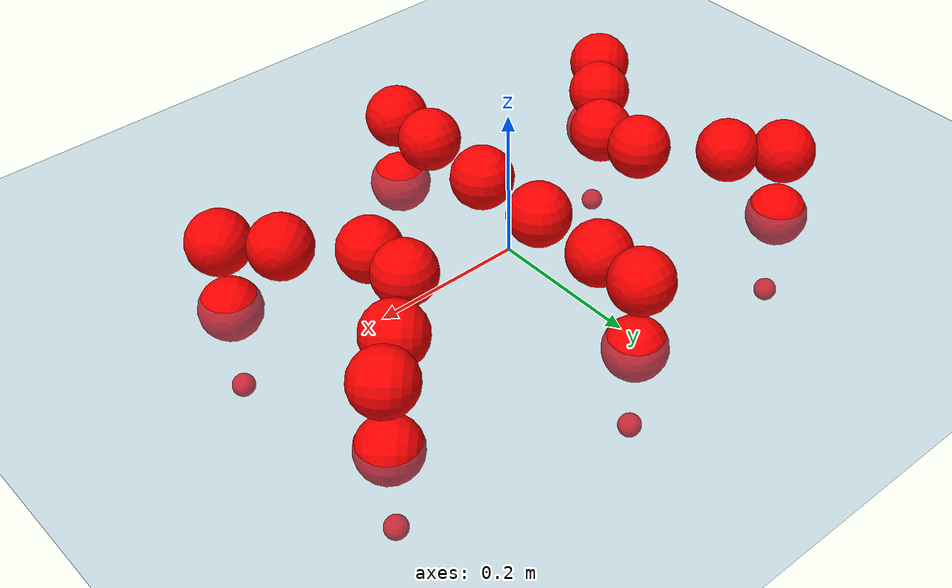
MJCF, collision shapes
<mujoco model="Golem">
  <compiler angle="radian" assetdir="assets" balanceinertia="true" inertiafromgeom="false"/>

  <option timestep="0.005" density="1.2" viscosity="2e-05"/>

  <size nkey="1"/>

  <visual>
    <quality shadowsize="8192"/>
    <map shadowclip="0.5"/>
  </visual>

  <default>
    <default class="/">
      <joint armature="0.01" damping="0.01" frictionloss="0.01"/>
      <geom contype="0" conaffinity="0" group="1" solref="-1000 -80"/>
      <site size="0.01 0.005 0.005" group="5"/>
      <general forcelimited="true" biastype="affine" gainprm="25" biasprm="0 -25 -0.5"/>
      <default class="visual">
        <geom type="mesh" group="2"/>
      </default>
      <default class="collision">
        <geom group="3"/>
      </default>
      <default class="foot">
        <geom size="0.01 0 0" condim="6" group="4" priority="1" solimp="0.015 1 0.01"/>
      </default>
      <default class="reward_collision_sphere">
        <geom group="5" rgba="1 0 0 1"/>
      </default>
    </default>
  </default>

  <asset>
    <texture type="skybox" colorspace="auto" name="//unnamed_texture_0" builtin="gradient" rgb1="0.95 0.95 0.95" rgb2="0.95 0.95 0.95" width="100" height="600"/>
    <texture type="2d" colorspace="auto" name="texplane" builtin="checker" rgb1="0.345 0.575 0.748" rgb2="0.345 0.575 0.748" markrgb="1 1 1" width="512" height="512"/>
    <material name="MatPlane" class="/" texture="texplane" texuniform="true" texrepeat="2 2" specular="0.9"/>
    <mesh name="body" class="/" file="body.stl" scale="0.001 0.001 0.001"/>
    <mesh name="coxa" class="/" file="coxa.stl" scale="0.001 0.001 0.001"/>
    <mesh name="femur" class="/" file="femur.stl" scale="0.001 0.001 0.001"/>
    <mesh name="tibia" class="/" file="tibia.stl" scale="0.001 0.001 0.001"/>
    <mesh name="tarsus" class="/" file="tarsus.stl" scale="0.001 0.001 0.001"/>
  </asset>

  <worldbody>
    <geom name="floor" class="/" size="100 100 0.125" type="plane" group="0" material="MatPlane"/>
    <light name="toplight_shadow" class="/" pos="0 0 5" dir="0.0990148 0.0990148 -0.990148" type="directional" ambient="0.04 0.04 0.04" diffuse="0.55 0.55 0.55" specular="0.12 0.12 0.12"/>
    <light name="toplight_fill" class="/" pos="0 0 5" dir="0.0990148 0.0990148 -0.990148" type="directional" castshadow="false" ambient="0.04 0.04 0.04" diffuse="0.3 0.3 0.3" specular="0.08 0.08 0.08"/>
    <body name="trunk" pos="-0.00195592 0.000812163 0.00339799" quat="1 -3.41639e-05 8.73281e-05 0.000366775">
      <inertial pos="0.00193436 0.000210293 -0.00353864" quat="1 4.71788e-05 -5.30868e-05 3.18168e-05" mass="4.01252" diaginertia="0.0286122 0.00125325 0.0256753"/>
      <joint name="//unnamed_joint_0" type="free"/>
      <geom name="//unnamed_geom_1" class="/" pos="0 0 0.0766909" quat="1 0 0 0" type="mesh" rgba="0.9 0.9 0.9 1" mesh="body"/>
      <site name="imu" class="/" pos="0.163165 -0.00642924 0.132752" size="0.0102547"/>
      <camera name="track" class="/" pos="0 -1.31757 0" quat="0.707107 0.707107 0 0" mode="trackcom"/>
      <camera name="ego_camera" class="/" pos="0.158511 0 0.11983" quat="-0.5 -0.5 0.5 0.5"/>
      <body name="coxa_RR" pos="-0.212813 -0.0570058 0.0779245" quat="0.38297 0.000439821 0.000442875 -0.923761">
        <inertial pos="0.00105449 0.00315121 0.00167827" quat="0.999928 0.00232303 0.00749561 -0.00904348" mass="0.226235" diaginertia="0.028413 0.0012824 0.0269705"/>
        <joint name="coxa_joint_RR" class="/" pos="0 0 0" axis="0.0121664 -0.0210621 -0.999704" stiffness="7.71931e-05" range="-3.14725 3.13026" armature="0.00957823" damping="0.0105231" frictionloss="0.0111191"/>
        <geom name="//unnamed_geom_2" class="/" type="mesh" rgba="0.2 0.2 0.2 1" mesh="coxa"/>
        <geom name="//unnamed_geom_3" class="reward_collision_sphere" size="0.0410186" pos="-0.0365795 0 0"/>
        <body name="femur_RR" pos="0.0688157 0.00378464 -0.00690364" quat="0.498859 -0.500374 0.500009 0.500756">
          <inertial pos="-0.00281737 0.00109893 -0.00150174" quat="0.999991 -0.00132607 -0.00337171 0.00242281" mass="0.214515" diaginertia="0.0265447 0.00121193 0.0243194"/>
          <joint name="femur_joint_RR" class="/" pos="0 0 0" axis="0.00229013 0.00176122 -0.999996" range="-3.08796 3.18642" armature="0.0100619" damping="0.0293233" frictionloss="0.0103136"/>
          <geom name="//unnamed_geom_4" class="/" type="mesh" rgba="0.9 0.9 0.9 1" mesh="femur"/>
          <geom name="//unnamed_geom_5" class="reward_collision_sphere" size="0.0410186"/>
          <body name="tibia_RR" pos="-0.00316454 -0.0709818 0.000473302" quat="-0.000233788 1 0.000306405 -0.000603302">
            <inertial pos="0.00162917 -0.000628773 -0.000113532" quat="0.999999 0.00093476 -0.00112815 -0.000641532" mass="0.215776" diaginertia="0.0263724 0.00119026 0.0234729"/>
            <joint name="tibia_joint_RR" class="/" pos="0 0 0" axis="-0.00148087 -0.0076893 0.999969" stiffness="0.00490411" range="-3.0798 3.09172" armature="0.0103314" damping="0.00825394" frictionloss="0.010942"/>
            <geom name="//unnamed_geom_6" class="/" type="mesh" rgba="0.2 0.2 0.2 1" mesh="tibia"/>
            <geom name="//unnamed_geom_7" class="reward_collision_sphere" size="0.0410186"/>
            <body name="tarsus_RR" pos="0.108481 -0.00276255 -0.00296133" quat="0.999999 -0.000406336 -0.00113949 0.000112752">
              <inertial pos="0.0771017 -0.00201568 0.000106786" quat="0.490734 0.507564 0.500936 0.500622" mass="0.219367" diaginertia="0.0278581 0.00130046 0.0253035"/>
              <joint name="tarsus_joint_RR" class="/" pos="0 0 0" axis="-0.000828809 0.000853447 0.999999" stiffness="0.0214986" range="-3.09964 3.14599" armature="0.0101583" damping="0.0192051" frictionloss="0.00992675"/>
              <geom name="//unnamed_geom_8" class="/" type="mesh" rgba="0.9 0.9 0.9 1" mesh="tarsus"/>
              <geom name="foot_1" class="foot" size="0.00999298" pos="0.136564 0 0" quat="0 -0.707107 0 0.707107"/>
              <geom name="//unnamed_geom_10" class="reward_collision_sphere" size="0.0410186"/>
              <geom name="//unnamed_geom_11" class="reward_collision_sphere" size="0.015382" pos="0.131077 0 0"/>
              <site name="foot_1" class="foot" pos="0.136564 0 0" quat="0 -0.707107 0 0.707107" size="0.0102547"/>
            </body>
          </body>
        </body>
      </body>
      <body name="coxa_RM" pos="0.000547965 -0.0891276 0.0804401" quat="0.70817 -0.000818044 -0.0008717 -0.706041">
        <inertial pos="0.00173381 -0.000196056 -0.00173882" quat="0.999956 -0.00139278 0.00556844 -0.00737013" mass="0.212317" diaginertia="0.0276747 0.00123265 0.0233638"/>
        <joint name="coxa_joint_RM" class="/" pos="0 0 0" axis="-0.00445078 -0.00300406 -0.999986" range="-3.05948 3.15538" armature="0.00883494" damping="0.0186831" frictionloss="0.0104253"/>
        <geom name="//unnamed_geom_12" class="/" type="mesh" rgba="0.2 0.2 0.2 1" mesh="coxa"/>
        <geom name="//unnamed_geom_13" class="reward_collision_sphere" size="0.0410186" pos="-0.0365795 0 0"/>
        <body name="femur_RM" pos="0.0713385 -0.00286135 0.000667945" quat="0.49917 -0.50027 0.500463 0.500096">
          <inertial pos="0.00173306 -0.0024885 0.00208564" quat="0.99996 -0.00562574 0.00655973 0.00224706" mass="0.213487" diaginertia="0.0265327 0.00123673 0.0241436"/>
          <joint name="femur_joint_RM" class="/" pos="0 0 0" axis="0.000294359 -0.00162723 -0.999999" stiffness="0.0160759" range="-3.13108 3.15473" armature="0.0111975" damping="0.00980978" frictionloss="0.00907186"/>
          <geom name="//unnamed_geom_14" class="/" type="mesh" rgba="0.9 0.9 0.9 1" mesh="femur"/>
          <geom name="//unnamed_geom_15" class="reward_collision_sphere" size="0.0410186"/>
          <body name="tibia_RM" pos="0.000459637 -0.0715021 -0.00239206" quat="-0.000270921 0.999999 -0.000826151 0.000730522">
            <inertial pos="-0.00309874 -0.00460066 0.000451582" quat="0.999923 0.0105147 -0.00522983 0.00397528" mass="0.206143" diaginertia="0.0258213 0.00118791 0.0241092"/>
            <joint name="tibia_joint_RM" class="/" pos="0 0 0" axis="-0.00283587 -0.00486809 0.999984" range="-3.13513 3.2351" armature="0.0110592" damping="0.0203732" frictionloss="0.0105336"/>
            <geom name="//unnamed_geom_16" class="/" type="mesh" rgba="0.2 0.2 0.2 1" mesh="tibia"/>
            <geom name="//unnamed_geom_17" class="reward_collision_sphere" size="0.0410186"/>
            <body name="tarsus_RM" pos="0.10993 0.0025063 0.0018836" quat="1 1.66397e-05 -1.95016e-05 3.40832e-05">
              <inertial pos="0.0754497 -0.00347554 0.00282437" quat="0.501989 0.502202 0.498415 0.497376" mass="0.226461" diaginertia="0.0272401 0.00127837 0.0241488"/>
              <joint name="tarsus_joint_RM" class="/" pos="0 0 0" axis="0.00722018 -0.000642427 0.999974" range="-3.12907 3.09239" armature="0.0109039" damping="0.0164863" frictionloss="0.0104714"/>
              <geom name="//unnamed_geom_18" class="/" type="mesh" rgba="0.9 0.9 0.9 1" mesh="tarsus"/>
              <geom name="foot_2" class="foot" size="0.0111627" pos="0.136564 0 0" quat="0 -0.707107 0 0.707107"/>
              <geom name="//unnamed_geom_20" class="reward_collision_sphere" size="0.0410186"/>
              <geom name="//unnamed_geom_21" class="reward_collision_sphere" size="0.015382" pos="0.131077 0 0"/>
              <site name="foot_2" class="foot" pos="0.136564 0 0" quat="0 -0.707107 0 0.707107" size="0.0102547"/>
            </body>
          </body>
        </body>
      </body>
      <body name="coxa_RF" pos="0.217925 -0.0572452 0.0802479" quat="0.923939 -0.000118269 -0.000195751 -0.38254">
        <inertial pos="0.00213523 0.00263042 -0.000994593" quat="0.999981 -0.0036484 -0.00279761 0.00422376" mass="0.209325" diaginertia="0.0251359 0.00123786 0.0231034"/>
        <joint name="coxa_joint_RF" class="/" pos="0 0 0" axis="0.00229776 0.00231834 -0.999995" range="-3.16051 3.13681" armature="0.0106769" damping="0.0108911" frictionloss="0.0106801"/>
        <geom name="//unnamed_geom_22" class="/" type="mesh" rgba="0.2 0.2 0.2 1" mesh="coxa"/>
        <geom name="//unnamed_geom_23" class="reward_collision_sphere" size="0.0410186" pos="-0.0365795 0 0"/>
        <body name="femur_RF" pos="0.069279 0.000183551 -0.000728953" quat="0.499459 -0.500632 0.499704 0.500204">
          <inertial pos="-0.0020406 -0.00211902 0.00164985" quat="0.999962 -0.00411764 0.00633704 0.00431227" mass="0.231267" diaginertia="0.0273536 0.00126592 0.025656"/>
          <joint name="femur_joint_RF" class="/" pos="0 0 0" axis="-0.00295648 -0.00169394 -0.999994" stiffness="0.0200562" range="-3.09304 3.19544" armature="0.0124275" damping="0.00796358" frictionloss="0.012306"/>
          <geom name="//unnamed_geom_24" class="/" type="mesh" rgba="0.9 0.9 0.9 1" mesh="femur"/>
          <geom name="//unnamed_geom_25" class="reward_collision_sphere" size="0.0410186"/>
          <body name="tibia_RF" pos="-4.12972e-05 -0.0741838 -0.00348469" quat="-0.000114533 1 -0.000213448 -0.000159018">
            <inertial pos="0.00258879 -0.00217614 -7.64492e-05" quat="0.999996 0.00156441 -0.000491577 -0.00215304" mass="0.217267" diaginertia="0.0269441 0.00123108 0.0245113"/>
            <joint name="tibia_joint_RF" class="/" pos="0 0 0" axis="-0.00716165 -0.00108405 0.999974" range="-3.12441 3.14978" armature="0.0104543" damping="0.013018" frictionloss="0.0108364"/>
            <geom name="//unnamed_geom_26" class="/" type="mesh" rgba="0.2 0.2 0.2 1" mesh="tibia"/>
            <geom name="//unnamed_geom_27" class="reward_collision_sphere" size="0.0410186"/>
            <body name="tarsus_RF" pos="0.106307 -0.000776786 0.00220969" quat="1 2.33415e-06 1.13897e-05 -7.46318e-07">
              <inertial pos="0.0751339 -0.00117441 -1.21135e-05" quat="0.492562 0.517985 0.500931 0.487998" mass="0.217521" diaginertia="0.0262445 0.00121675 0.0252451"/>
              <joint name="tarsus_joint_RF" class="/" pos="0 0 0" axis="-0.0021631 -0.00681422 0.999974" range="-3.18971 3.1266" armature="0.0119071" damping="0" frictionloss="0.0110518"/>
              <geom name="//unnamed_geom_28" class="/" type="mesh" rgba="0.9 0.9 0.9 1" mesh="tarsus"/>
              <geom name="foot_3" class="foot" size="0.0102569" pos="0.136564 0 0" quat="0 -0.707107 0 0.707107"/>
              <geom name="//unnamed_geom_30" class="reward_collision_sphere" size="0.0410186"/>
              <geom name="//unnamed_geom_31" class="reward_collision_sphere" size="0.015382" pos="0.131077 0 0"/>
              <site name="foot_3" class="foot" pos="0.136564 0 0" quat="0 -0.707107 0 0.707107" size="0.0102547"/>
            </body>
          </body>
        </body>
      </body>
      <body name="coxa_LR" pos="-0.220945 0.0554541 0.0792546" quat="0.38357 -0.000813368 -5.43697e-06 0.923511">
        <inertial pos="0.00262113 -0.00116296 -0.000105266" quat="0.999876 -0.013626 0.00795092 -0.000259992" mass="0.209094" diaginertia="0.0273102 0.00122553 0.0247205"/>
        <joint name="coxa_joint_LR" class="/" pos="0 0 0" axis="-0.0139211 0.00158557 -0.999902" stiffness="0.000399047" range="-3.12835 3.17601" armature="0.00981822" damping="0.014272" frictionloss="0.0114992"/>
        <geom name="//unnamed_geom_32" class="/" type="mesh" rgba="0.2 0.2 0.2 1" mesh="coxa"/>
        <geom name="//unnamed_geom_33" class="reward_collision_sphere" size="0.0410186" pos="-0.0365795 0 0"/>
        <body name="femur_LR" pos="0.0776675 0.000718456 -0.000608991" quat="0.500054 -0.499978 0.499996 0.499973">
          <inertial pos="0.00152624 0.00287543 -0.00282867" quat="1 0.000243189 -0.000141228 -0.000174833" mass="0.212314" diaginertia="0.0280134 0.00123199 0.0243955"/>
          <joint name="femur_joint_LR" class="/" pos="0 0 0" axis="0.0174929 -0.00116372 0.999846" range="-3.14198 3.14744" armature="0.007705" damping="0.00874564" frictionloss="0.0109635"/>
          <geom name="//unnamed_geom_34" class="/" type="mesh" rgba="0.9 0.9 0.9 1" mesh="femur"/>
          <geom name="//unnamed_geom_35" class="reward_collision_sphere" size="0.0410186"/>
          <body name="tibia_LR" pos="-0.00123995 -0.0711129 0.000255274" quat="-0.00046809 1 4.52131e-05 0.000306611">
            <inertial pos="0.000128153 0.00290181 -0.000833345" quat="0.999968 -0.00423808 -0.000515542 -0.00672705" mass="0.216928" diaginertia="0.0266178 0.00126174 0.0257556"/>
            <joint name="tibia_joint_LR" class="/" pos="0 0 0" axis="0.00918838 0.00814316 -0.999925" stiffness="0.0137537" range="-3.15576 3.1818" armature="0.0105719" damping="0.0275617" frictionloss="0.0103504"/>
            <geom name="//unnamed_geom_36" class="/" type="mesh" rgba="0.2 0.2 0.2 1" mesh="tibia"/>
            <geom name="//unnamed_geom_37" class="reward_collision_sphere" size="0.0410186"/>
            <body name="tarsus_LR" pos="0.10265 0.0026923 -0.000694161" quat="1 9.48898e-05 0.000157893 -8.36389e-05">
              <inertial pos="0.0701234 0.00244422 0.000565361" quat="0.500366 0.501466 0.49927 0.498894" mass="0.211647" diaginertia="0.0265955 0.00124356 0.0252269"/>
              <joint name="tarsus_joint_LR" class="/" pos="0 0 0" axis="0.00554148 -0.0118276 -0.999915" range="-3.12951 3.11314" armature="0.0109889" damping="0.0366734" frictionloss="0.0101267"/>
              <geom name="//unnamed_geom_38" class="/" type="mesh" rgba="0.9 0.9 0.9 1" mesh="tarsus"/>
              <geom name="foot_4" class="foot" size="0.00996083" pos="0.136564 0 0" quat="0.707107 0 -0.707107 0"/>
              <geom name="//unnamed_geom_40" class="reward_collision_sphere" size="0.0410186"/>
              <geom name="//unnamed_geom_41" class="reward_collision_sphere" size="0.015382" pos="0.131077 0 0"/>
              <site name="foot_4" class="foot" pos="0.136564 0 0" quat="0.707107 0 -0.707107 0" size="0.0102547"/>
            </body>
          </body>
        </body>
      </body>
      <body name="coxa_LM" pos="-0.00351671 0.0852733 0.0783354" quat="0.707084 8.27682e-05 0.0001273 0.707129">
        <inertial pos="0.000950744 0.00258158 0.00271463" quat="0.999971 0.00557519 0.00370173 0.00370968" mass="0.216997" diaginertia="0.0262715 0.0011967 0.0252234"/>
        <joint name="coxa_joint_LM" class="/" pos="0 0 0" axis="-0.0113926 0.00364131 -0.999928" range="-3.09891 3.06043" armature="0.0103485" damping="0.0137509" frictionloss="0.0106422"/>
        <geom name="//unnamed_geom_42" class="/" type="mesh" rgba="0.2 0.2 0.2 1" mesh="coxa"/>
        <geom name="//unnamed_geom_43" class="reward_collision_sphere" size="0.0410186" pos="-0.0365795 0 0"/>
        <body name="femur_LM" pos="0.066492 0.00182317 0.00114999" quat="0.500542 -0.499677 0.500268 0.499513">
          <inertial pos="-0.00026219 -0.00243322 -0.000244489" quat="0.999997 0.000561138 0.00164222 -0.00145197" mass="0.205553" diaginertia="0.0258329 0.00123281 0.024217"/>
          <joint name="femur_joint_LM" class="/" pos="0 0 0" axis="-0.00214529 -0.00136226 0.999997" range="-3.08664 3.1899" armature="0.0114169" damping="0.00818949" frictionloss="0.0103526"/>
          <geom name="//unnamed_geom_44" class="/" type="mesh" rgba="0.9 0.9 0.9 1" mesh="femur"/>
          <geom name="//unnamed_geom_45" class="reward_collision_sphere" size="0.0410186"/>
          <body name="tibia_LM" pos="-0.000399831 -0.0691361 0.000112406" quat="0.000637619 0.999999 0.000566483 0.00109728">
            <inertial pos="0.000302964 0.00147132 -0.000100296" quat="0.999931 -0.0070923 0.00903008 -0.00266646" mass="0.224382" diaginertia="0.0275253 0.00131817 0.0253406"/>
            <joint name="tibia_joint_LM" class="/" pos="0 0 0" axis="-0.00166738 -0.000495511 -0.999998" stiffness="0.0232065" range="-3.14397 3.1326" armature="0.0114591" damping="0.0241043" frictionloss="0.0103466"/>
            <geom name="//unnamed_geom_46" class="/" type="mesh" rgba="0.2 0.2 0.2 1" mesh="tibia"/>
            <geom name="//unnamed_geom_47" class="reward_collision_sphere" size="0.0410186"/>
            <body name="tarsus_LM" pos="0.104493 -0.00157448 0.00140309" quat="1 9.11476e-05 -0.000237791 -1.9397e-05">
              <inertial pos="0.0726738 0.000400509 -0.000976201" quat="0.501547 0.50541 0.493796 0.499176" mass="0.209904" diaginertia="0.0281293 0.00122224 0.0249007"/>
              <joint name="tarsus_joint_LM" class="/" pos="0 0 0" axis="0.00502102 -0.00966671 -0.999941" stiffness="0.00160838" range="-3.19221 3.14363" armature="0.00946157" damping="0.0107856" frictionloss="0.0100423"/>
              <geom name="//unnamed_geom_48" class="/" type="mesh" rgba="0.9 0.9 0.9 1" mesh="tarsus"/>
              <geom name="foot_5" class="foot" size="0.0119772" pos="0.136564 0 0" quat="0.707107 0 -0.707107 0"/>
              <geom name="//unnamed_geom_50" class="reward_collision_sphere" size="0.0410186"/>
              <geom name="//unnamed_geom_51" class="reward_collision_sphere" size="0.015382" pos="0.131077 0 0"/>
              <site name="foot_5" class="foot" pos="0.136564 0 0" quat="0.707107 0 -0.707107 0" size="0.0102547"/>
            </body>
          </body>
        </body>
      </body>
      <body name="coxa_LF" pos="0.213972 0.0554015 0.080402" quat="0.924307 -0.000568337 0.000714128 0.381648">
        <inertial pos="0.000926949 -9.17401e-05 -0.00072989" quat="0.999916 0.0034529 -0.0106042 0.00653819" mass="0.207785" diaginertia="0.0264414 0.00128132 0.0240914"/>
        <joint name="coxa_joint_LF" class="/" pos="0 0 0" axis="0.00304671 0.00516607 -0.999982" range="-3.09033 3.17418" armature="0.0110533" damping="0.0299663" frictionloss="0.0108527"/>
        <geom name="//unnamed_geom_52" class="/" type="mesh" rgba="0.2 0.2 0.2 1" mesh="coxa"/>
        <geom name="//unnamed_geom_53" class="reward_collision_sphere" size="0.0410186" pos="-0.0365795 0 0"/>
        <body name="femur_LF" pos="0.0709214 0.00196603 0.0025094" quat="0.500275 -0.499978 0.499145 0.500601">
          <inertial pos="-0.00081743 0.000221287 -0.00263693" quat="0.999999 -0.000898785 -0.000434119 -0.000187248" mass="0.201729" diaginertia="0.027069 0.00119633 0.0245253"/>
          <joint name="femur_joint_LF" class="/" pos="0 0 0" axis="-0.00125398 -0.000965028 0.999999" range="-3.10235 3.13629" armature="0.0105608" damping="0" frictionloss="0.00928129"/>
          <geom name="//unnamed_geom_54" class="/" type="mesh" rgba="0.9 0.9 0.9 1" mesh="femur"/>
          <geom name="//unnamed_geom_55" class="reward_collision_sphere" size="0.0410186"/>
          <body name="tibia_LF" pos="-0.00290084 -0.0769442 -0.00149497" quat="-0.00147303 0.999999 -0.000124167 0.000733395">
            <inertial pos="0.00239483 -0.00354051 0.0012135" quat="0.999886 -0.00546149 -0.00898903 -0.0108374" mass="0.205432" diaginertia="0.0273079 0.00123013 0.0246221"/>
            <joint name="tibia_joint_LF" class="/" pos="0 0 0" axis="0.00248143 0.000677688 -0.999997" stiffness="0.00804964" range="-3.23149 3.1772" armature="0.00931258" damping="0" frictionloss="0.0102843"/>
            <geom name="//unnamed_geom_56" class="/" type="mesh" rgba="0.2 0.2 0.2 1" mesh="tibia"/>
            <geom name="//unnamed_geom_57" class="reward_collision_sphere" size="0.0410186"/>
            <body name="tarsus_LF" pos="0.103168 -0.000837304 -8.82072e-05" quat="1 0.00014114 0.000657828 -0.000464518">
              <inertial pos="0.0767296 -0.00164349 -0.000865774" quat="0.49996 0.500986 0.498815 0.500237" mass="0.213196" diaginertia="0.0265219 0.00122929 0.0237415"/>
              <joint name="tarsus_joint_LF" class="/" pos="0 0 0" axis="0.00124656 0.00852338 -0.999963" stiffness="0.0117524" range="-3.1225 3.16163" armature="0.00910691" damping="0.0278993" frictionloss="0.00809041"/>
              <geom name="//unnamed_geom_58" class="/" type="mesh" rgba="0.9 0.9 0.9 1" mesh="tarsus"/>
              <geom name="foot_6" class="foot" size="0.0114177" pos="0.136564 0 0" quat="0.707107 0 -0.707107 0"/>
              <geom name="//unnamed_geom_60" class="reward_collision_sphere" size="0.0410186"/>
              <geom name="//unnamed_geom_61" class="reward_collision_sphere" size="0.015382" pos="0.131077 0 0"/>
              <site name="foot_6" class="foot" pos="0.136564 0 0" quat="0.707107 0 -0.707107 0" size="0.0102547"/>
            </body>
          </body>
        </body>
      </body>
    </body>
  </worldbody>

  <contact>
    <pair class="/" geom1="floor" geom2="foot_1" name="//unnamed_contact_0"/>
    <pair class="/" geom1="floor" geom2="foot_2" name="//unnamed_contact_1"/>
    <pair class="/" geom1="floor" geom2="foot_3" name="//unnamed_contact_2"/>
    <pair class="/" geom1="floor" geom2="foot_4" name="//unnamed_contact_3"/>
    <pair class="/" geom1="floor" geom2="foot_5" name="//unnamed_contact_4"/>
    <pair class="/" geom1="floor" geom2="foot_6" name="//unnamed_contact_5"/>
  </contact>

  <actuator>
    <general name="coxa_joint_RR" class="/" joint="coxa_joint_RR" forcerange="-7.70486 7.70486" gainprm="25.4856" biasprm="0 -25.4856 -0.533889"/>
    <general name="femur_joint_RR" class="/" joint="femur_joint_RR" forcerange="-7.41706 7.41706" gainprm="25.4856" biasprm="0 -25.4856 -0.533889"/>
    <general name="tibia_joint_RR" class="/" joint="tibia_joint_RR" forcerange="-7.64154 7.64154" gainprm="25.4856" biasprm="0 -25.4856 -0.533889"/>
    <general name="tarsus_joint_RR" class="/" joint="tarsus_joint_RR" forcerange="-7.81001 7.81001" gainprm="25.4856" biasprm="0 -25.4856 -0.533889"/>
    <general name="coxa_joint_RM" class="/" joint="coxa_joint_RM" forcerange="-8.22471 8.22471" gainprm="25.4856" biasprm="0 -25.4856 -0.533889"/>
    <general name="femur_joint_RM" class="/" joint="femur_joint_RM" forcerange="-8.1363 8.1363" gainprm="25.4856" biasprm="0 -25.4856 -0.533889"/>
    <general name="tibia_joint_RM" class="/" joint="tibia_joint_RM" forcerange="-7.69508 7.69508" gainprm="25.4856" biasprm="0 -25.4856 -0.533889"/>
    <general name="tarsus_joint_RM" class="/" joint="tarsus_joint_RM" forcerange="-7.37159 7.37159" gainprm="25.4856" biasprm="0 -25.4856 -0.533889"/>
    <general name="coxa_joint_RF" class="/" joint="coxa_joint_RF" forcerange="-7.85245 7.85245" gainprm="25.4856" biasprm="0 -25.4856 -0.533889"/>
    <general name="femur_joint_RF" class="/" joint="femur_joint_RF" forcerange="-6.23307 6.23307" gainprm="25.4856" biasprm="0 -25.4856 -0.533889"/>
    <general name="tibia_joint_RF" class="/" joint="tibia_joint_RF" forcerange="-6.66915 6.66915" gainprm="25.4856" biasprm="0 -25.4856 -0.533889"/>
    <general name="tarsus_joint_RF" class="/" joint="tarsus_joint_RF" forcerange="-6.86237 6.86237" gainprm="25.4856" biasprm="0 -25.4856 -0.533889"/>
    <general name="coxa_joint_LR" class="/" joint="coxa_joint_LR" forcerange="-7.4506 7.4506" gainprm="25.4856" biasprm="0 -25.4856 -0.533889"/>
    <general name="femur_joint_LR" class="/" joint="femur_joint_LR" forcerange="-7.30263 7.30263" gainprm="25.4856" biasprm="0 -25.4856 -0.533889"/>
    <general name="tibia_joint_LR" class="/" joint="tibia_joint_LR" forcerange="-6.33878 6.33878" gainprm="25.4856" biasprm="0 -25.4856 -0.533889"/>
    <general name="tarsus_joint_LR" class="/" joint="tarsus_joint_LR" forcerange="-6.66874 6.66874" gainprm="25.4856" biasprm="0 -25.4856 -0.533889"/>
    <general name="coxa_joint_LM" class="/" joint="coxa_joint_LM" forcerange="-7.63171 7.63171" gainprm="25.4856" biasprm="0 -25.4856 -0.533889"/>
    <general name="femur_joint_LM" class="/" joint="femur_joint_LM" forcerange="-7.04863 7.04863" gainprm="25.4856" biasprm="0 -25.4856 -0.533889"/>
    <general name="tibia_joint_LM" class="/" joint="tibia_joint_LM" forcerange="-7.54555 7.54555" gainprm="25.4856" biasprm="0 -25.4856 -0.533889"/>
    <general name="tarsus_joint_LM" class="/" joint="tarsus_joint_LM" forcerange="-6.84378 6.84378" gainprm="25.4856" biasprm="0 -25.4856 -0.533889"/>
    <general name="coxa_joint_LF" class="/" joint="coxa_joint_LF" forcerange="-7.65286 7.65286" gainprm="25.4856" biasprm="0 -25.4856 -0.533889"/>
    <general name="femur_joint_LF" class="/" joint="femur_joint_LF" forcerange="-6.93282 6.93282" gainprm="25.4856" biasprm="0 -25.4856 -0.533889"/>
    <general name="tibia_joint_LF" class="/" joint="tibia_joint_LF" forcerange="-7.10818 7.10818" gainprm="25.4856" biasprm="0 -25.4856 -0.533889"/>
    <general name="tarsus_joint_LF" class="/" joint="tarsus_joint_LF" forcerange="-7.88141 7.88141" gainprm="25.4856" biasprm="0 -25.4856 -0.533889"/>
  </actuator>

  <sensor>
    <gyro site="imu" name="imu_angular_velocity"/>
    <velocimeter site="imu" name="imu_linear_velocity"/>
    <framelinvel objtype="site" objname="foot_1" name="foot_1_global_linear_velocity"/>
    <framelinvel objtype="site" objname="foot_2" name="foot_2_global_linear_velocity"/>
    <framelinvel objtype="site" objname="foot_3" name="foot_3_global_linear_velocity"/>
    <framelinvel objtype="site" objname="foot_4" name="foot_4_global_linear_velocity"/>
    <framelinvel objtype="site" objname="foot_5" name="foot_5_global_linear_velocity"/>
    <framelinvel objtype="site" objname="foot_6" name="foot_6_global_linear_velocity"/>
  </sensor>

  <keyframe>
    <key name="home" qpos="0 0 0.1457 1 0 0 0 0 0 0 0 0 0 0 0 0 0 0 0 0 0 0 0 0 0 0 0 0 0 0 0"/>
  </keyframe>
</mujoco>
